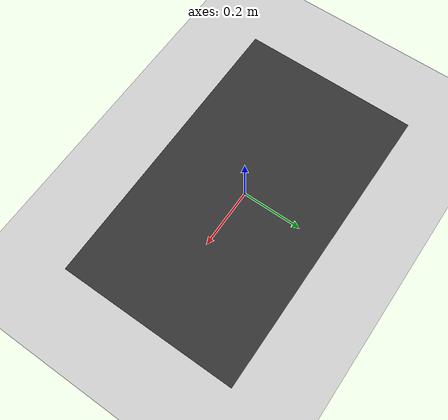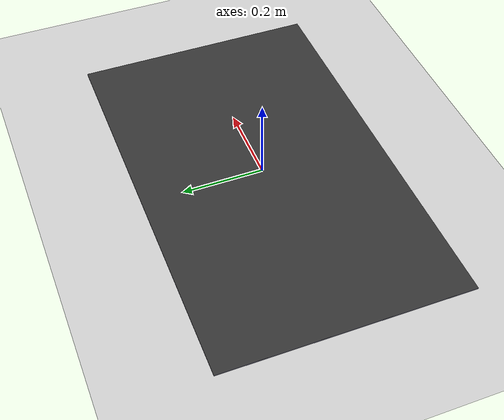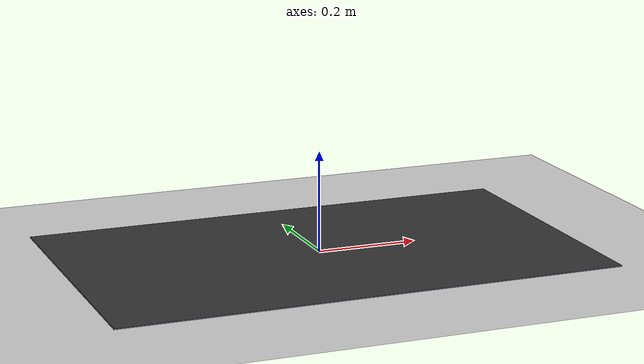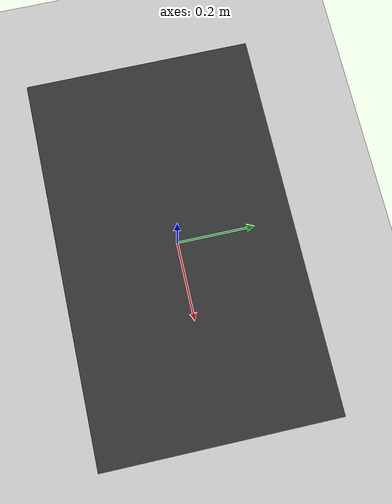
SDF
<?xml version="1.0" ?>
<sdf version="1.8">
  <world name="empty_world">

    <!-- Physics -->
    <physics name="1ms" type="ode">
      <max_step_size>0.001</max_step_size>
      <real_time_factor>1.0</real_time_factor>
      <ode>
        <solver>
          <type>quick</type>
          <iters>50</iters>
          <sor>1.3</sor>
        </solver>
        <constraints>
          <cfm>0.0</cfm>
          <erp>0.2</erp>
          <contact_max_correcting_vel>100.0</contact_max_correcting_vel>
          <contact_surface_layer>0.001</contact_surface_layer>
        </constraints>
      </ode>
    </physics>

    <!-- Plugins -->
    <plugin filename="gz-sim-physics-system" name="gz::sim::systems::Physics"/>
    <plugin filename="gz-sim-user-commands-system" name="gz::sim::systems::UserCommands"/>
    <plugin filename="gz-sim-scene-broadcaster-system" name="gz::sim::systems::SceneBroadcaster"/>
    <plugin filename="gz-sim-contact-system" name="gz::sim::systems::Contact"/>
    <plugin filename="gz-sim-sensors-system" name="gz::sim::systems::Sensors">
      <render_engine>ogre2</render_engine>
    </plugin>

    <!-- Lighting -->
    <light type="directional" name="sun">
      <cast_shadows>true</cast_shadows>
      <pose>0 0 10 0 0 0</pose>
      <diffuse>0.8 0.8 0.8 1</diffuse>
      <specular>0.2 0.2 0.2 1</specular>
      <attenuation>
        <range>1000</range>
        <constant>0.9</constant>
        <linear>0.01</linear>
        <quadratic>0.001</quadratic>
      </attenuation>
      <direction>-0.5 0.1 -0.9</direction>
    </light>

    <!-- Ground Plane -->
    <model name="ground_plane">
      <static>true</static>
      <link name="link">
        <collision name="collision">
          <geometry>
            <plane>
              <normal>0 0 1</normal>
              <size>100 100</size>
            </plane>
          </geometry>
          <surface>
            <friction>
              <ode>
                <mu>1.0</mu>
                <mu2>1.0</mu2>
              </ode>
            </friction>
            <contact>
              <ode>
                <kp>1e7</kp>
                <kd>1.0</kd>
              </ode>
            </contact>
          </surface>
        </collision>
        <visual name="visual">
          <geometry>
            <plane>
              <normal>0 0 1</normal>
              <size>100 100</size>
            </plane>
          </geometry>
          <material>
            <ambient>0.8 0.8 0.8 1</ambient>
            <diffuse>0.8 0.8 0.8 1</diffuse>
            <specular>0.8 0.8 0.8 1</specular>
          </material>
        </visual>
      </link>
    </model>

    <!-- Pressure Mat -->
    <include>
      <uri>model://pressure_mat</uri>
      <pose>0 0 0 0 0 0</pose>
    </include>

  </world>
</sdf>

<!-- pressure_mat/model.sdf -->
<!--
Pressure sensing mat for humanoid robot testing
This mat detects contact forces and publishes pressure distribution data
-->
<sdf version="1.8">
  <model name="pressure_mat">
    <static>true</static>

    <link name="mat_base">
      <!-- Main mat collision -->
      <collision name="mat_collision">
        <geometry>
          <box>
            <size>1.0 0.6 0.002</size>  <!-- 1m x 0.6m x 2mm mat -->
          </box>
        </geometry>
        <surface>
          <contact>
            <ode>
              <kp>500.0</kp>  <!-- Very soft mat surface -->
              <kd>10.0</kd>   <!-- Low damping -->
              <max_vel>0.1</max_vel>
              <min_depth>0.03</min_depth>  <!-- Allow 3cm penetration -->
            </ode>
          </contact>
          <friction>
            <ode>
              <mu>2.0</mu>   <!-- High friction to match feet -->
              <mu2>2.0</mu2>
            </ode>
          </friction>
        </surface>
      </collision>

      <!-- Main mat visual -->
      <visual name="mat_visual">
        <geometry>
          <box>
            <size>1.0 0.6 0.002</size>
          </box>
        </geometry>
        <material>
          <ambient>0.3 0.3 0.4 0.9</ambient>
          <diffuse>0.4 0.4 0.5 0.9</diffuse>
          <specular>0.1 0.1 0.1 1</specular>
        </material>
      </visual>

      <!-- Grid lines for visual reference -->
      <visual name="grid_visual">
        <pose>0 0 0.0015 0 0 0</pose>
        <geometry>
          <box>
            <size>1.0 0.6 0.0001</size>
          </box>
        </geometry>
        <material>
          <ambient>0.2 0.2 0.2 1</ambient>
          <diffuse>0.2 0.2 0.2 1</diffuse>
        </material>
      </visual>

      <!-- Contact sensor for the entire mat -->
      <sensor name="pressure_mat_contact_sensor" type="contact">
        <always_on>true</always_on>
        <update_rate>100.0</update_rate>  <!-- 100 Hz sampling -->
        <contact>
          <collision>mat_collision</collision>
        </contact>
      </sensor>
    </link>
  </model>
</sdf>
